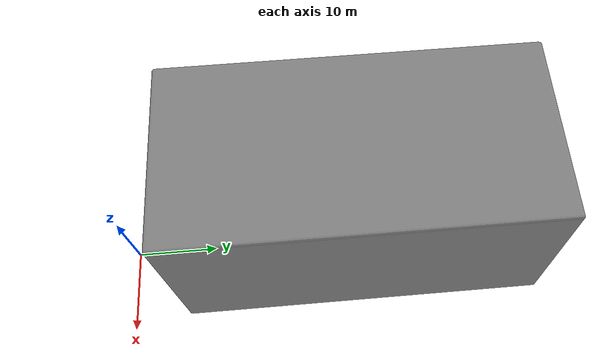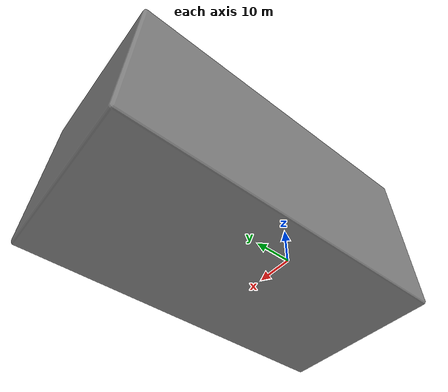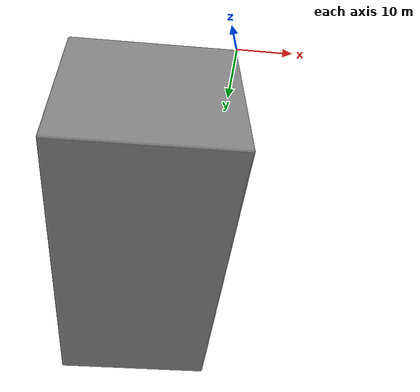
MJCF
<?xml version='1.0' encoding='utf8'?>
<mujoco model="cuboid_model">

    <option timestep="0.01" gravity="0 0 -9.81" />

    <asset>
        <mesh name="cuboid_vis" file="visual/cuboid.obj" scale="1 1 1" />
        <mesh name="cuboid_mesh._coll" file="collision/cuboid.stl" scale="1 1 1" />

    </asset>

    <worldbody>
        <body name="object" pos="0 0 0.1">
            <geom solimp="0.998 0.998 0.001" solref="0.001 1" density="100" friction="0.95 0.3 0.1" type="mesh" mesh="cuboid_vis" conaffinity="0" contype="0" group="1" />
            <geom solimp="0.998 0.998 0.001" solref="0.001 1" density="100" friction="0.95 0.3 0.1" type="mesh" mesh="cuboid_mesh._coll" group="0" rgba="0.8 0.8 0.8 0.0" />
        </body>

        <site rgba="0 0 0 0" size="0.005" pos="1.8000000023832283e-09 0.0001579002000000018 -0.03245274" name="bottom_site" />
        <site rgba="0 0 0 0" size="0.005" pos="1.8000000023832283e-09 0.0001579002000000018 0.033050489999999995" name="top_site" />
        <site rgba="0 0 0 0" size="0.005" pos="0.05891761439999999 0.057567376799999986 0.0002988749999999995" name="horizontal_radius_site" />
    </worldbody>
</mujoco>
